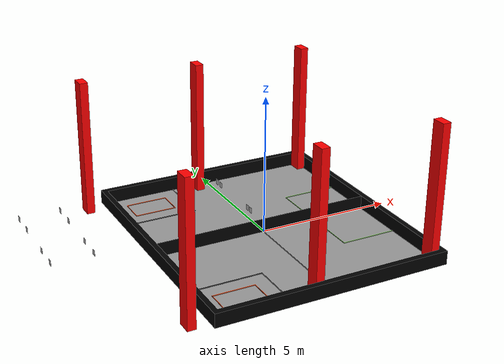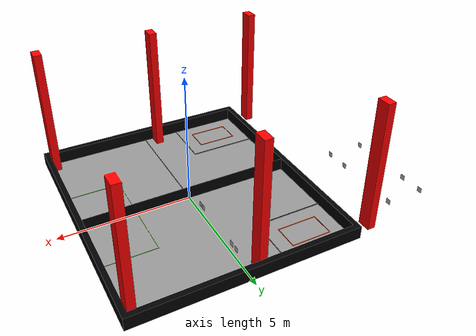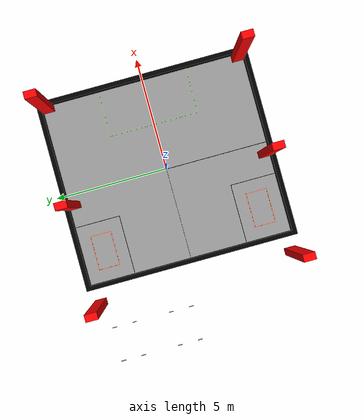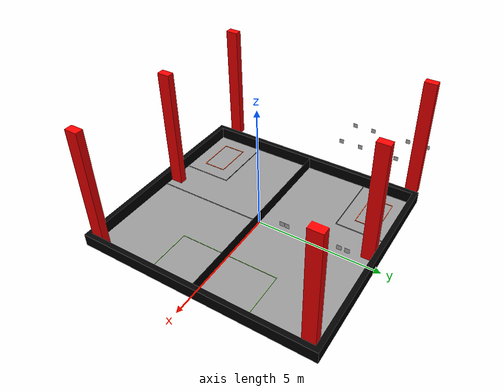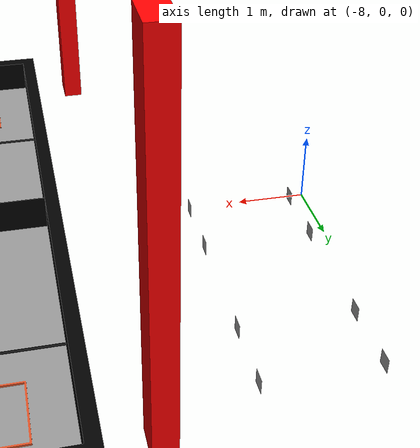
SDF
<sdf version="1.8">
 <world name="competition_field">
  <plugin filename="ignition-gazebo-physics-system" name="ignition::gazebo::systems::Physics"/>
  <plugin filename="ignition-gazebo-sensors-system" name="ignition::gazebo::systems::Sensors">
   <render_engine>ogre2</render_engine>
  </plugin>
  <plugin filename="ignition-gazebo-scene-broadcaster-system" name="ignition::gazebo::systems::SceneBroadcaster"/>
  <plugin filename="ignition-gazebo-user-commands-system" name="ignition::gazebo::systems::UserCommands"/>
  <include><uri>package://ros_gz_description/models/sun</uri></include>
  <include><uri>package://ros_gz_description/models/competition_field</uri><static>true</static></include>
 </world>
</sdf>

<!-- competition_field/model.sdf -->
<sdf version='1.7'>
  <model name='competition_field'>
    <static>true</static>
    <pose>0 0 0 0 0 0</pose>
      <link name='field'>
        <collision name="collision">
          <geometry>
            <mesh>
              <uri>meshes/basic_collision.stl</uri>
            </mesh>
          </geometry>
        </collision>
        <visual name="visual">
          <geometry>
            <mesh>
              <uri>meshes/competition_field.dae</uri>
            </mesh>
          </geometry>
        </visual>
      </link>

      <!-- orintation like rule book, bottom field. plus x, plus y from bottom right-->

      <frame name="bottom_bottom_right">
        <pose>4.07 -4.57 0 0 0 0</pose>
      </frame>

      <!--
      Tags in the starting zone.
      This assumes that we are placing 2 tags on the wall.
      -->
      <include>
        <uri>/src/gazebo/ros_gz_description/models/Apriltag36_11_00000</uri>
        <pose relative_to='bottom_bottom_right'>0 3.67 0.4 1.57 0 -1.57</pose> <!-- 3.57 + beaconwidth/2 to center it -->
        <name>AprilTag_1_Bottom</name>
      </include>

      <include>
        <uri>/src/gazebo/ros_gz_description/models/Apriltag36_11_00001</uri>
        <pose relative_to='bottom_bottom_right'>0 3.3541 0.4 1.57 0 -1.57</pose>
        <name>AprilTag_2_Bottom</name>
      </include>

      <!--
      Tags in the berm area.
      Goes Top left, Top right, Bottom left, Bottom right from tags 3-6
      -->
      <include>
        <uri>/src/gazebo/ros_gz_description/models/Apriltag36_11_00002</uri>
        <pose relative_to='bottom_bottom_right'>-7.59 1.45 0.4 1.57 0 -1.57</pose>
        <name>AprilTag_3_Bottom</name>
      </include>

      <include>
        <uri>/src/gazebo/ros_gz_description/models/Apriltag36_11_00003</uri>
        <pose relative_to='bottom_bottom_right'>-6.09 1.45 0.4 1.57 0 -1.57</pose>
        <name>AprilTag_4_Bottom</name>
      </include>

      <include>
        <uri>/src/gazebo/ros_gz_description/models/Apriltag36_11_00004</uri>
        <pose relative_to='bottom_bottom_right'>-7.59 0.55 0.4 1.57 0 -1.57</pose>
        <name>AprilTag_5_Bottom</name>
      </include>

      <include>
        <uri>/src/gazebo/ros_gz_description/models/Apriltag36_11_00005</uri>
        <pose relative_to='bottom_bottom_right'>-6.09 0.55 0.4 1.57 0 -1.57</pose>
        <name>AprilTag_6_Bottom</name>
      </include>

      <!-- orintation like rule book, top field. plus x, plus y from bottom right-->

      <frame name="top_bottom_right">
        <pose>4.07 0 0 0 0 0</pose>
      </frame>

      <!--
      Tags in the starting zone.
      This assumes that we are placing 2 tags on the wall.
      -->
      <include>
        <uri>/src/gazebo/ros_gz_description/models/Apriltag36_11_00000</uri>
        <pose relative_to='top_bottom_right'>0 1 0.4 1.57 0 -1.57</pose>
        <name>AprilTag_1_Top</name>
      </include>

      <include>
        <uri>/src/gazebo/ros_gz_description/models/Apriltag36_11_00001</uri>
        <pose relative_to='top_bottom_right'>0 1.2159 0.4 1.57 0 -1.57</pose>
        <name>AprilTag_2_Top</name>
      </include>

      <!--
      Tags in the berm area.
      Goes Top left, Top right, Bottom left, Bottom right from tags 3-6
      -->
      <include>
        <uri>/src/gazebo/ros_gz_description/models/Apriltag36_11_00002</uri>
        <pose relative_to='top_bottom_right'>-7.59 4.02 0.4 1.57 0 -1.57</pose>
        <name>AprilTag_3_Top</name>
      </include>

      <include>
        <uri>/src/gazebo/ros_gz_description/models/Apriltag36_11_00003</uri>
        <pose relative_to='top_bottom_right'>-6.09 4.02 0.4 1.57 0 -1.57</pose>
        <name>AprilTag_4_Top</name>
      </include>

      <include>
        <uri>/src/gazebo/ros_gz_description/models/Apriltag36_11_00004</uri>
        <pose relative_to='top_bottom_right'>-7.59 3.12 0.4 1.57 0 -1.57</pose>
        <name>AprilTag_5_Top</name>
      </include>

      <include>
        <uri>/src/gazebo/ros_gz_description/models/Apriltag36_11_00005</uri>
        <pose relative_to='top_bottom_right'>-6.09 3.12 0.4 1.57 0 -1.57</pose>
        <name>AprilTag_6_Top</name>
      </include>
  </model>
</sdf>

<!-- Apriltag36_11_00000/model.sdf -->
<sdf version='1.6'>
  <model name='Apriltag36_11_00000'>
    <link name='main'>
    <pose frame=''>0 0 0 0 0 0</pose>
      <visual name='main_Visual'>
        <geometry>
          <mesh>
            <uri>materials/meshes/apriltag.dae</uri>
            <scale>0.2 0.2 0.2</scale>
          </mesh>
        </geometry>
      </visual>
     </link>
    <static>1</static>
  </model>
</sdf>

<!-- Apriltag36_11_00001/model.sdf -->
<sdf version='1.6'>
  <model name='Apriltag36_11_00001'>
    <link name='main'>
    <pose frame=''>0 0 0 0 0 0</pose>
      <visual name='main_Visual'>
        <geometry>
          <mesh>
            <uri>materials/meshes/apriltag.dae</uri>
            <scale>0.2 0.2 0.2</scale>
          </mesh>
        </geometry>
      </visual>
     </link>
    <static>1</static>
  </model>
</sdf>

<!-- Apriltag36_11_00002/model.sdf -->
<sdf version='1.6'>
  <model name='Apriltag36_11_00002'>
    <link name='main'>
    <pose frame=''>0 0 0 0 0 0</pose>
      <visual name='main_Visual'>
        <geometry>
          <mesh>
            <uri>materials/meshes/apriltag.dae</uri>
            <scale>0.2 0.2 0.2</scale>
          </mesh>
        </geometry>
      </visual>
     </link>
    <static>1</static>
  </model>
</sdf>

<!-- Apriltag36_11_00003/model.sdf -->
<sdf version='1.6'>
  <model name='Apriltag36_11_00003'>
    <link name='main'>
    <pose frame=''>0 0 0 0 0 0</pose>
      <visual name='main_Visual'>
        <geometry>
          <mesh>
            <uri>materials/meshes/apriltag.dae</uri>
            <scale>0.2 0.2 0.2</scale>
          </mesh>
        </geometry>
      </visual>
     </link>
    <static>1</static>
  </model>
</sdf>

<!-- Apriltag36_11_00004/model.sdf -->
<sdf version='1.6'>
  <model name='Apriltag36_11_00004'>
    <link name='main'>
    <pose frame=''>0 0 0 0 0 0</pose>
      <visual name='main_Visual'>
        <geometry>
          <mesh>
            <uri>materials/meshes/apriltag.dae</uri>
            <scale>0.2 0.2 0.2</scale>
          </mesh>
        </geometry>
      </visual>
     </link>
    <static>1</static>
  </model>
</sdf>

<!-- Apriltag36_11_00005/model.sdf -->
<sdf version='1.6'>
  <model name='Apriltag36_11_00005'>
    <link name='main'>
    <pose frame=''>0 0 0 0 0 0</pose>
      <visual name='main_Visual'>
        <geometry>
          <mesh>
            <uri>materials/meshes/apriltag.dae</uri>
            <scale>0.2 0.2 0.2</scale>
          </mesh>
        </geometry>
      </visual>
     </link>
    <static>1</static>
  </model>
</sdf>
